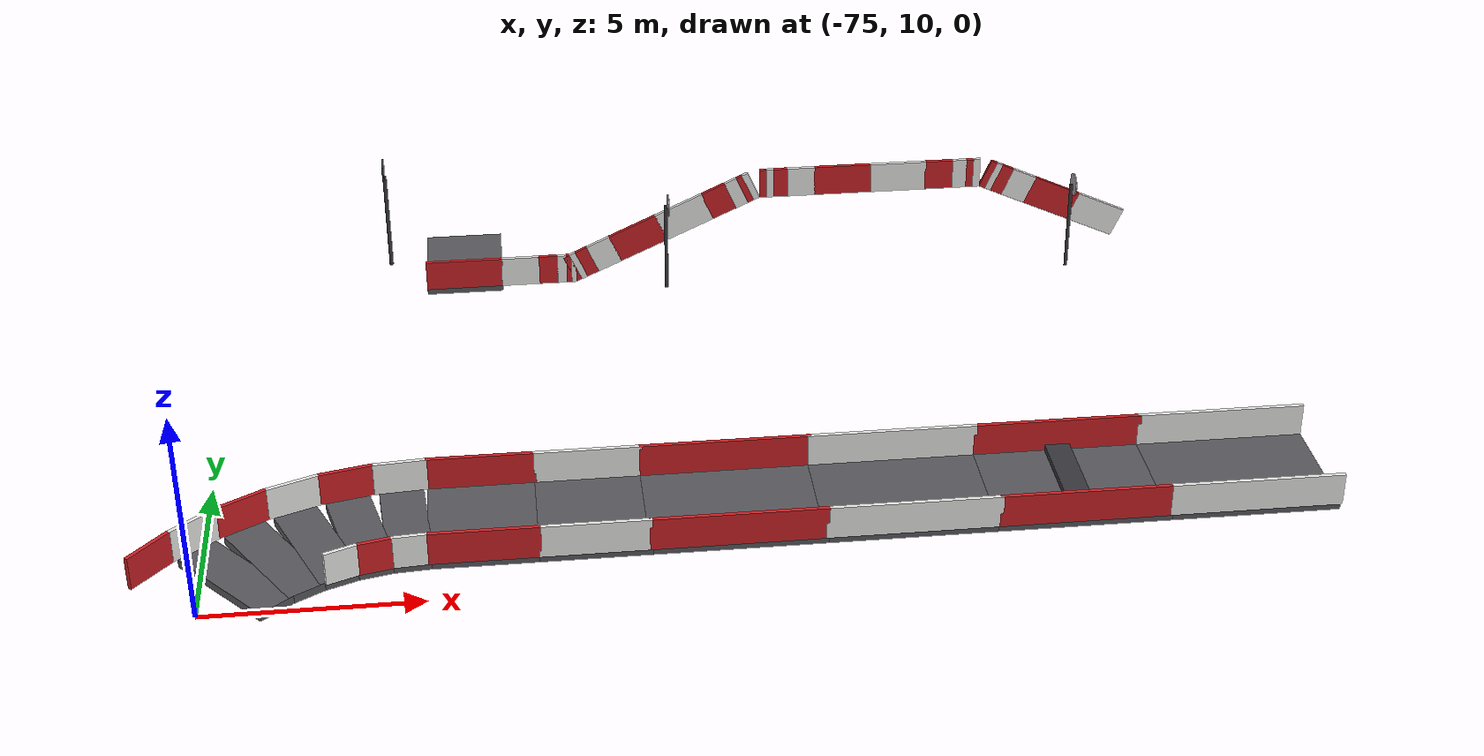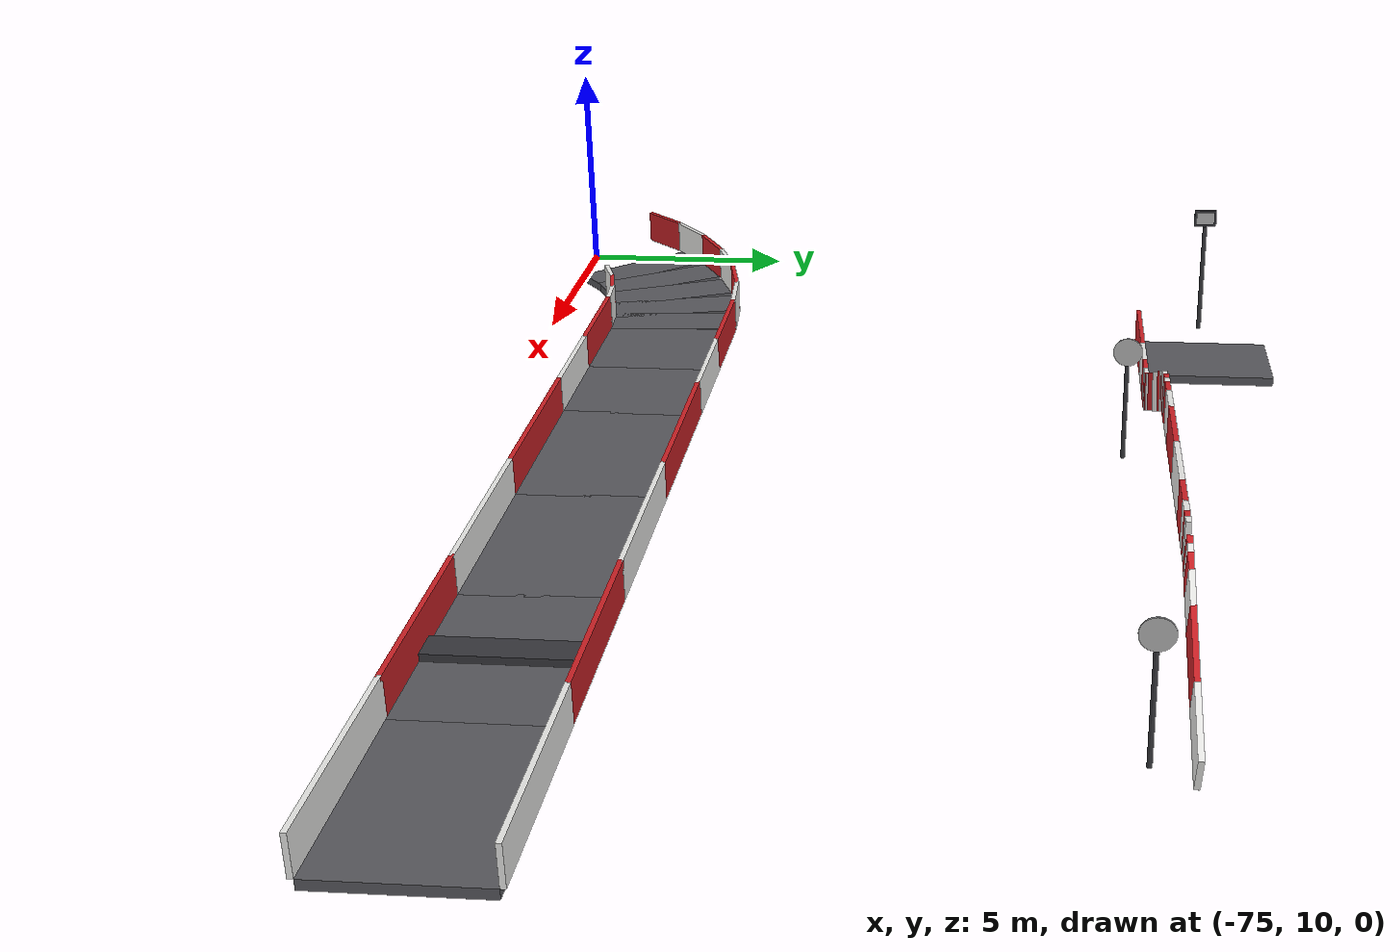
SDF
<sdf version="1.10">
 <world name="ika_parkur">
  <model name="parkur_road">
   <static>true</static>
   <link name="road_0095">
    <pose>-74.208399 11.427402 -0.1 0 0 0.706858</pose>
    <collision name="road_0095_col">
     <geometry><box><size>1.040368 3 0.2</size></box></geometry>
     <surface>
      <friction><ode><mu>1</mu><mu2>1</mu2></ode></friction>
      <contact><ode><kp>1000000</kp><kd>1</kd></ode></contact>
     </surface>
    </collision>
    <visual name="road_0095_vis">
     <geometry><box><size>1.040368 3 0.2</size></box></geometry>
     <material>
      <ambient>0.35 0.35 0.37 1</ambient>
      <diffuse>0.35 0.35 0.37 1</diffuse>
      <specular>0.1 0.1 0.1 1</specular>
     </material>
    </visual>
   </link>
   <link name="road_0096">
    <pose>-73.385771 12.025076 -0.1 0 0 0.549779</pose>
    <collision name="road_0096_col">
     <geometry><box><size>1.040368 3 0.2</size></box></geometry>
     <surface>
      <friction><ode><mu>1</mu><mu2>1</mu2></ode></friction>
      <contact><ode><kp>1000000</kp><kd>1</kd></ode></contact>
     </surface>
    </collision>
    <visual name="road_0096_vis">
     <geometry><box><size>1.040368 3 0.2</size></box></geometry>
     <material>
      <ambient>0.35 0.35 0.37 1</ambient>
      <diffuse>0.35 0.35 0.37 1</diffuse>
      <specular>0.1 0.1 0.1 1</specular>
     </material>
    </visual>
   </link>
   <link name="road_0097">
    <pose>-72.479774 12.486705 -0.1 0 0 0.392699</pose>
    <collision name="road_0097_col">
     <geometry><box><size>1.040368 3 0.2</size></box></geometry>
     <surface>
      <friction><ode><mu>1</mu><mu2>1</mu2></ode></friction>
      <contact><ode><kp>1000000</kp><kd>1</kd></ode></contact>
     </surface>
    </collision>
    <visual name="road_0097_vis">
     <geometry><box><size>1.040368 3 0.2</size></box></geometry>
     <material>
      <ambient>0.35 0.35 0.37 1</ambient>
      <diffuse>0.35 0.35 0.37 1</diffuse>
      <specular>0.1 0.1 0.1 1</specular>
     </material>
    </visual>
   </link>
   <link name="road_0098">
    <pose>-71.512717 12.800921 -0.1 0 0 0.235619</pose>
    <collision name="road_0098_col">
     <geometry><box><size>1.040368 3 0.2</size></box></geometry>
     <surface>
      <friction><ode><mu>1</mu><mu2>1</mu2></ode></friction>
      <contact><ode><kp>1000000</kp><kd>1</kd></ode></contact>
     </surface>
    </collision>
    <visual name="road_0098_vis">
     <geometry><box><size>1.040368 3 0.2</size></box></geometry>
     <material>
      <ambient>0.35 0.35 0.37 1</ambient>
      <diffuse>0.35 0.35 0.37 1</diffuse>
      <specular>0.1 0.1 0.1 1</specular>
     </material>
    </visual>
   </link>
   <link name="road_0099">
    <pose>-70.508412 12.959987 -0.1 0 0 0.07854</pose>
    <collision name="road_0099_col">
     <geometry><box><size>1.040368 3 0.2</size></box></geometry>
     <surface>
      <friction><ode><mu>1</mu><mu2>1</mu2></ode></friction>
      <contact><ode><kp>1000000</kp><kd>1</kd></ode></contact>
     </surface>
    </collision>
    <visual name="road_0099_vis">
     <geometry><box><size>1.040368 3 0.2</size></box></geometry>
     <material>
      <ambient>0.35 0.35 0.37 1</ambient>
      <diffuse>0.35 0.35 0.37 1</diffuse>
      <specular>0.1 0.1 0.1 1</specular>
     </material>
    </visual>
   </link>
   <link name="road_0100">
    <pose>-68.75 13 -0.1 0 0 0</pose>
    <collision name="road_0100_col">
     <geometry><box><size>2.55 3 0.2</size></box></geometry>
     <surface>
      <friction><ode><mu>1</mu><mu2>1</mu2></ode></friction>
      <contact><ode><kp>1000000</kp><kd>1</kd></ode></contact>
     </surface>
    </collision>
    <visual name="road_0100_vis">
     <geometry><box><size>2.55 3 0.2</size></box></geometry>
     <material>
      <ambient>0.35 0.35 0.37 1</ambient>
      <diffuse>0.35 0.35 0.37 1</diffuse>
      <specular>0.1 0.1 0.1 1</specular>
     </material>
    </visual>
   </link>
   <link name="road_0101">
    <pose>-66.25 13 -0.1 0 0 0</pose>
    <collision name="road_0101_col">
     <geometry><box><size>2.55 3 0.2</size></box></geometry>
     <surface>
      <friction><ode><mu>1</mu><mu2>1</mu2></ode></friction>
      <contact><ode><kp>1000000</kp><kd>1</kd></ode></contact>
     </surface>
    </collision>
    <visual name="road_0101_vis">
     <geometry><box><size>2.55 3 0.2</size></box></geometry>
     <material>
      <ambient>0.35 0.35 0.37 1</ambient>
      <diffuse>0.35 0.35 0.37 1</diffuse>
      <specular>0.1 0.1 0.1 1</specular>
     </material>
    </visual>
   </link>
   <link name="road_0102">
    <pose>-63 13 -0.1 0 0 0</pose>
    <collision name="road_0102_col">
     <geometry><box><size>4.08 3 0.2</size></box></geometry>
     <surface>
      <friction><ode><mu>1</mu><mu2>1</mu2></ode></friction>
      <contact><ode><kp>1000000</kp><kd>1</kd></ode></contact>
     </surface>
    </collision>
    <visual name="road_0102_vis">
     <geometry><box><size>4.08 3 0.2</size></box></geometry>
     <material>
      <ambient>0.35 0.35 0.37 1</ambient>
      <diffuse>0.35 0.35 0.37 1</diffuse>
      <specular>0.1 0.1 0.1 1</specular>
     </material>
    </visual>
   </link>
   <link name="road_0103">
    <pose>-59 13 -0.1 0 0 0</pose>
    <collision name="road_0103_col">
     <geometry><box><size>4.08 3 0.2</size></box></geometry>
     <surface>
      <friction><ode><mu>1</mu><mu2>1</mu2></ode></friction>
      <contact><ode><kp>1000000</kp><kd>1</kd></ode></contact>
     </surface>
    </collision>
    <visual name="road_0103_vis">
     <geometry><box><size>4.08 3 0.2</size></box></geometry>
     <material>
      <ambient>0.35 0.35 0.37 1</ambient>
      <diffuse>0.35 0.35 0.37 1</diffuse>
      <specular>0.1 0.1 0.1 1</specular>
     </material>
    </visual>
   </link>
   <link name="road_0104">
    <pose>-55 13 -0.1 0 0 0</pose>
    <collision name="road_0104_col">
     <geometry><box><size>4.08 3 0.2</size></box></geometry>
     <surface>
      <friction><ode><mu>1</mu><mu2>1</mu2></ode></friction>
      <contact><ode><kp>1000000</kp><kd>1</kd></ode></contact>
     </surface>
    </collision>
    <visual name="road_0104_vis">
     <geometry><box><size>4.08 3 0.2</size></box></geometry>
     <material>
      <ambient>0.35 0.35 0.37 1</ambient>
      <diffuse>0.35 0.35 0.37 1</diffuse>
      <specular>0.1 0.1 0.1 1</specular>
     </material>
    </visual>
   </link>
   <link name="road_0105">
    <pose>-51 13 -0.1 0 0 0</pose>
    <collision name="road_0105_col">
     <geometry><box><size>4.08 3 0.2</size></box></geometry>
     <surface>
      <friction><ode><mu>1</mu><mu2>1</mu2></ode></friction>
      <contact><ode><kp>1000000</kp><kd>1</kd></ode></contact>
     </surface>
    </collision>
    <visual name="road_0105_vis">
     <geometry><box><size>4.08 3 0.2</size></box></geometry>
     <material>
      <ambient>0.35 0.35 0.37 1</ambient>
      <diffuse>0.35 0.35 0.37 1</diffuse>
      <specular>0.1 0.1 0.1 1</specular>
     </material>
    </visual>
   </link>
   <link name="road_0194">
    <pose>-69 26 -0.1 0 0 3.141593</pose>
    <collision name="road_0194_col">
     <geometry><box><size>2.04 3 0.2</size></box></geometry>
     <surface>
      <friction><ode><mu>1</mu><mu2>1</mu2></ode></friction>
      <contact><ode><kp>1000000</kp><kd>1</kd></ode></contact>
     </surface>
    </collision>
    <visual name="road_0194_vis">
     <geometry><box><size>2.04 3 0.2</size></box></geometry>
     <material>
      <ambient>0.35 0.35 0.37 1</ambient>
      <diffuse>0.35 0.35 0.37 1</diffuse>
      <specular>0.1 0.1 0.1 1</specular>
     </material>
    </visual>
   </link>
  </model>
  <model name="parkur_barriers">
   <static>true</static>
   <link name="barrier_l_0094">
    <pose>-76.102398 11.71194 0.4 0 0 0.863938</pose>
    <collision name="barrier_l_0094_col">
     <geometry><box><size>1.288455 0.1 0.8</size></box></geometry>
     <surface>
      <friction><ode><mu>0.6</mu><mu2>0.6</mu2></ode></friction>
      <contact><ode><kp>1000000</kp><kd>1</kd></ode></contact>
     </surface>
    </collision>
    <visual name="barrier_l_0094_vis">
     <geometry><box><size>1.288455 0.1 0.8</size></box></geometry>
     <material>
      <ambient>0.81 0.13 0.15 1</ambient>
      <diffuse>0.81 0.13 0.15 1</diffuse>
      <specular>0.1 0.1 0.1 1</specular>
     </material>
    </visual>
   </link>
   <link name="barrier_l_0095">
    <pose>-75.21194 12.602398 0.4 0 0 0.706858</pose>
    <collision name="barrier_l_0095_col">
     <geometry><box><size>1.288455 0.1 0.8</size></box></geometry>
     <surface>
      <friction><ode><mu>0.6</mu><mu2>0.6</mu2></ode></friction>
      <contact><ode><kp>1000000</kp><kd>1</kd></ode></contact>
     </surface>
    </collision>
    <visual name="barrier_l_0095_vis">
     <geometry><box><size>1.288455 0.1 0.8</size></box></geometry>
     <material>
      <ambient>0.93 0.93 0.92 1</ambient>
      <diffuse>0.93 0.93 0.92 1</diffuse>
      <specular>0.1 0.1 0.1 1</specular>
     </material>
    </visual>
   </link>
   <link name="barrier_l_0096">
    <pose>-74.193147 13.342595 0.4 0 0 0.549779</pose>
    <collision name="barrier_l_0096_col">
     <geometry><box><size>1.288455 0.1 0.8</size></box></geometry>
     <surface>
      <friction><ode><mu>0.6</mu><mu2>0.6</mu2></ode></friction>
      <contact><ode><kp>1000000</kp><kd>1</kd></ode></contact>
     </surface>
    </collision>
    <visual name="barrier_l_0096_vis">
     <geometry><box><size>1.288455 0.1 0.8</size></box></geometry>
     <material>
      <ambient>0.81 0.13 0.15 1</ambient>
      <diffuse>0.81 0.13 0.15 1</diffuse>
      <specular>0.1 0.1 0.1 1</specular>
     </material>
    </visual>
   </link>
   <link name="barrier_l_0097">
    <pose>-73.071105 13.914304 0.4 0 0 0.392699</pose>
    <collision name="barrier_l_0097_col">
     <geometry><box><size>1.288455 0.1 0.8</size></box></geometry>
     <surface>
      <friction><ode><mu>0.6</mu><mu2>0.6</mu2></ode></friction>
      <contact><ode><kp>1000000</kp><kd>1</kd></ode></contact>
     </surface>
    </collision>
    <visual name="barrier_l_0097_vis">
     <geometry><box><size>1.288455 0.1 0.8</size></box></geometry>
     <material>
      <ambient>0.93 0.93 0.92 1</ambient>
      <diffuse>0.93 0.93 0.92 1</diffuse>
      <specular>0.1 0.1 0.1 1</specular>
     </material>
    </visual>
   </link>
   <link name="barrier_r_0097">
    <pose>-71.888444 11.059106 0.4 0 0 0.392699</pose>
    <collision name="barrier_r_0097_col">
     <geometry><box><size>0.79228 0.1 0.8</size></box></geometry>
     <surface>
      <friction><ode><mu>0.6</mu><mu2>0.6</mu2></ode></friction>
      <contact><ode><kp>1000000</kp><kd>1</kd></ode></contact>
     </surface>
    </collision>
    <visual name="barrier_r_0097_vis">
     <geometry><box><size>0.79228 0.1 0.8</size></box></geometry>
     <material>
      <ambient>0.93 0.93 0.92 1</ambient>
      <diffuse>0.93 0.93 0.92 1</diffuse>
      <specular>0.1 0.1 0.1 1</specular>
     </material>
    </visual>
   </link>
   <link name="barrier_l_0098">
    <pose>-71.873442 14.303448 0.4 0 0 0.235619</pose>
    <collision name="barrier_l_0098_col">
     <geometry><box><size>1.288455 0.1 0.8</size></box></geometry>
     <surface>
      <friction><ode><mu>0.6</mu><mu2>0.6</mu2></ode></friction>
      <contact><ode><kp>1000000</kp><kd>1</kd></ode></contact>
     </surface>
    </collision>
    <visual name="barrier_l_0098_vis">
     <geometry><box><size>1.288455 0.1 0.8</size></box></geometry>
     <material>
      <ambient>0.81 0.13 0.15 1</ambient>
      <diffuse>0.81 0.13 0.15 1</diffuse>
      <specular>0.1 0.1 0.1 1</specular>
     </material>
    </visual>
   </link>
   <link name="barrier_r_0098">
    <pose>-71.151992 11.298394 0.4 0 0 0.235619</pose>
    <collision name="barrier_r_0098_col">
     <geometry><box><size>0.79228 0.1 0.8</size></box></geometry>
     <surface>
      <friction><ode><mu>0.6</mu><mu2>0.6</mu2></ode></friction>
      <contact><ode><kp>1000000</kp><kd>1</kd></ode></contact>
     </surface>
    </collision>
    <visual name="barrier_r_0098_vis">
     <geometry><box><size>0.79228 0.1 0.8</size></box></geometry>
     <material>
      <ambient>0.81 0.13 0.15 1</ambient>
      <diffuse>0.81 0.13 0.15 1</diffuse>
      <specular>0.1 0.1 0.1 1</specular>
     </material>
    </visual>
   </link>
   <link name="barrier_l_0099">
    <pose>-70.629649 14.500446 0.4 0 0 0.07854</pose>
    <collision name="barrier_l_0099_col">
     <geometry><box><size>1.288455 0.1 0.8</size></box></geometry>
     <surface>
      <friction><ode><mu>0.6</mu><mu2>0.6</mu2></ode></friction>
      <contact><ode><kp>1000000</kp><kd>1</kd></ode></contact>
     </surface>
    </collision>
    <visual name="barrier_l_0099_vis">
     <geometry><box><size>1.288455 0.1 0.8</size></box></geometry>
     <material>
      <ambient>0.93 0.93 0.92 1</ambient>
      <diffuse>0.93 0.93 0.92 1</diffuse>
      <specular>0.1 0.1 0.1 1</specular>
     </material>
    </visual>
   </link>
   <link name="barrier_r_0099">
    <pose>-70.387175 11.419529 0.4 0 0 0.07854</pose>
    <collision name="barrier_r_0099_col">
     <geometry><box><size>0.79228 0.1 0.8</size></box></geometry>
     <surface>
      <friction><ode><mu>0.6</mu><mu2>0.6</mu2></ode></friction>
      <contact><ode><kp>1000000</kp><kd>1</kd></ode></contact>
     </surface>
    </collision>
    <visual name="barrier_r_0099_vis">
     <geometry><box><size>0.79228 0.1 0.8</size></box></geometry>
     <material>
      <ambient>0.93 0.93 0.92 1</ambient>
      <diffuse>0.93 0.93 0.92 1</diffuse>
      <specular>0.1 0.1 0.1 1</specular>
     </material>
    </visual>
   </link>
   <link name="barrier_l_0100">
    <pose>-68.75 14.55 0.4 0 0 0</pose>
    <collision name="barrier_l_0100_col">
     <geometry><box><size>2.55 0.1 0.8</size></box></geometry>
     <surface>
      <friction><ode><mu>0.6</mu><mu2>0.6</mu2></ode></friction>
      <contact><ode><kp>1000000</kp><kd>1</kd></ode></contact>
     </surface>
    </collision>
    <visual name="barrier_l_0100_vis">
     <geometry><box><size>2.55 0.1 0.8</size></box></geometry>
     <material>
      <ambient>0.81 0.13 0.15 1</ambient>
      <diffuse>0.81 0.13 0.15 1</diffuse>
      <specular>0.1 0.1 0.1 1</specular>
     </material>
    </visual>
   </link>
   <link name="barrier_r_0100">
    <pose>-68.75 11.45 0.4 0 0 0</pose>
    <collision name="barrier_r_0100_col">
     <geometry><box><size>2.55 0.1 0.8</size></box></geometry>
     <surface>
      <friction><ode><mu>0.6</mu><mu2>0.6</mu2></ode></friction>
      <contact><ode><kp>1000000</kp><kd>1</kd></ode></contact>
     </surface>
    </collision>
    <visual name="barrier_r_0100_vis">
     <geometry><box><size>2.55 0.1 0.8</size></box></geometry>
     <material>
      <ambient>0.81 0.13 0.15 1</ambient>
      <diffuse>0.81 0.13 0.15 1</diffuse>
      <specular>0.1 0.1 0.1 1</specular>
     </material>
    </visual>
   </link>
   <link name="barrier_l_0101">
    <pose>-66.25 14.55 0.4 0 0 0</pose>
    <collision name="barrier_l_0101_col">
     <geometry><box><size>2.55 0.1 0.8</size></box></geometry>
     <surface>
      <friction><ode><mu>0.6</mu><mu2>0.6</mu2></ode></friction>
      <contact><ode><kp>1000000</kp><kd>1</kd></ode></contact>
     </surface>
    </collision>
    <visual name="barrier_l_0101_vis">
     <geometry><box><size>2.55 0.1 0.8</size></box></geometry>
     <material>
      <ambient>0.93 0.93 0.92 1</ambient>
      <diffuse>0.93 0.93 0.92 1</diffuse>
      <specular>0.1 0.1 0.1 1</specular>
     </material>
    </visual>
   </link>
   <link name="barrier_r_0101">
    <pose>-66.25 11.45 0.4 0 0 0</pose>
    <collision name="barrier_r_0101_col">
     <geometry><box><size>2.55 0.1 0.8</size></box></geometry>
     <surface>
      <friction><ode><mu>0.6</mu><mu2>0.6</mu2></ode></friction>
      <contact><ode><kp>1000000</kp><kd>1</kd></ode></contact>
     </surface>
    </collision>
    <visual name="barrier_r_0101_vis">
     <geometry><box><size>2.55 0.1 0.8</size></box></geometry>
     <material>
      <ambient>0.93 0.93 0.92 1</ambient>
      <diffuse>0.93 0.93 0.92 1</diffuse>
      <specular>0.1 0.1 0.1 1</specular>
     </material>
    </visual>
   </link>
   <link name="barrier_l_0102">
    <pose>-63 14.55 0.4 0 0 0</pose>
    <collision name="barrier_l_0102_col">
     <geometry><box><size>4.08 0.1 0.8</size></box></geometry>
     <surface>
      <friction><ode><mu>0.6</mu><mu2>0.6</mu2></ode></friction>
      <contact><ode><kp>1000000</kp><kd>1</kd></ode></contact>
     </surface>
    </collision>
    <visual name="barrier_l_0102_vis">
     <geometry><box><size>4.08 0.1 0.8</size></box></geometry>
     <material>
      <ambient>0.81 0.13 0.15 1</ambient>
      <diffuse>0.81 0.13 0.15 1</diffuse>
      <specular>0.1 0.1 0.1 1</specular>
     </material>
    </visual>
   </link>
   <link name="barrier_r_0102">
    <pose>-63 11.45 0.4 0 0 0</pose>
    <collision name="barrier_r_0102_col">
     <geometry><box><size>4.08 0.1 0.8</size></box></geometry>
     <surface>
      <friction><ode><mu>0.6</mu><mu2>0.6</mu2></ode></friction>
      <contact><ode><kp>1000000</kp><kd>1</kd></ode></contact>
     </surface>
    </collision>
    <visual name="barrier_r_0102_vis">
     <geometry><box><size>4.08 0.1 0.8</size></box></geometry>
     <material>
      <ambient>0.81 0.13 0.15 1</ambient>
      <diffuse>0.81 0.13 0.15 1</diffuse>
      <specular>0.1 0.1 0.1 1</specular>
     </material>
    </visual>
   </link>
   <link name="barrier_l_0103">
    <pose>-59 14.55 0.4 0 0 0</pose>
    <collision name="barrier_l_0103_col">
     <geometry><box><size>4.08 0.1 0.8</size></box></geometry>
     <surface>
      <friction><ode><mu>0.6</mu><mu2>0.6</mu2></ode></friction>
      <contact><ode><kp>1000000</kp><kd>1</kd></ode></contact>
     </surface>
    </collision>
    <visual name="barrier_l_0103_vis">
     <geometry><box><size>4.08 0.1 0.8</size></box></geometry>
     <material>
      <ambient>0.93 0.93 0.92 1</ambient>
      <diffuse>0.93 0.93 0.92 1</diffuse>
      <specular>0.1 0.1 0.1 1</specular>
     </material>
    </visual>
   </link>
   <link name="barrier_r_0103">
    <pose>-59 11.45 0.4 0 0 0</pose>
    <collision name="barrier_r_0103_col">
     <geometry><box><size>4.08 0.1 0.8</size></box></geometry>
     <surface>
      <friction><ode><mu>0.6</mu><mu2>0.6</mu2></ode></friction>
      <contact><ode><kp>1000000</kp><kd>1</kd></ode></contact>
     </surface>
    </collision>
    <visual name="barrier_r_0103_vis">
     <geometry><box><size>4.08 0.1 0.8</size></box></geometry>
     <material>
      <ambient>0.93 0.93 0.92 1</ambient>
      <diffuse>0.93 0.93 0.92 1</diffuse>
      <specular>0.1 0.1 0.1 1</specular>
     </material>
    </visual>
   </link>
   <link name="barrier_l_0104">
    <pose>-55 14.55 0.4 0 0 0</pose>
    <collision name="barrier_l_0104_col">
     <geometry><box><size>4.08 0.1 0.8</size></box></geometry>
     <surface>
      <friction><ode><mu>0.6</mu><mu2>0.6</mu2></ode></friction>
      <contact><ode><kp>1000000</kp><kd>1</kd></ode></contact>
     </surface>
    </collision>
    <visual name="barrier_l_0104_vis">
     <geometry><box><size>4.08 0.1 0.8</size></box></geometry>
     <material>
      <ambient>0.81 0.13 0.15 1</ambient>
      <diffuse>0.81 0.13 0.15 1</diffuse>
      <specular>0.1 0.1 0.1 1</specular>
     </material>
    </visual>
   </link>
   <link name="barrier_r_0104">
    <pose>-55 11.45 0.4 0 0 0</pose>
    <collision name="barrier_r_0104_col">
     <geometry><box><size>4.08 0.1 0.8</size></box></geometry>
     <surface>
      <friction><ode><mu>0.6</mu><mu2>0.6</mu2></ode></friction>
      <contact><ode><kp>1000000</kp><kd>1</kd></ode></contact>
     </surface>
    </collision>
    <visual name="barrier_r_0104_vis">
     <geometry><box><size>4.08 0.1 0.8</size></box></geometry>
     <material>
      <ambient>0.81 0.13 0.15 1</ambient>
      <diffuse>0.81 0.13 0.15 1</diffuse>
      <specular>0.1 0.1 0.1 1</specular>
     </material>
    </visual>
   </link>
   <link name="barrier_l_0105">
    <pose>-51 14.55 0.4 0 0 0</pose>
    <collision name="barrier_l_0105_col">
     <geometry><box><size>4.08 0.1 0.8</size></box></geometry>
     <surface>
      <friction><ode><mu>0.6</mu><mu2>0.6</mu2></ode></friction>
      <contact><ode><kp>1000000</kp><kd>1</kd></ode></contact>
     </surface>
    </collision>
    <visual name="barrier_l_0105_vis">
     <geometry><box><size>4.08 0.1 0.8</size></box></geometry>
     <material>
      <ambient>0.93 0.93 0.92 1</ambient>
      <diffuse>0.93 0.93 0.92 1</diffuse>
      <specular>0.1 0.1 0.1 1</specular>
     </material>
    </visual>
   </link>
   <link name="barrier_r_0105">
    <pose>-51 11.45 0.4 0 0 0</pose>
    <collision name="barrier_r_0105_col">
     <geometry><box><size>4.08 0.1 0.8</size></box></geometry>
     <surface>
      <friction><ode><mu>0.6</mu><mu2>0.6</mu2></ode></friction>
      <contact><ode><kp>1000000</kp><kd>1</kd></ode></contact>
     </surface>
    </collision>
    <visual name="barrier_r_0105_vis">
     <geometry><box><size>4.08 0.1 0.8</size></box></geometry>
     <material>
      <ambient>0.93 0.93 0.92 1</ambient>
      <diffuse>0.93 0.93 0.92 1</diffuse>
      <specular>0.1 0.1 0.1 1</specular>
     </material>
    </visual>
   </link>
   <link name="barrier_l_0163">
    <pose>-51.710854 24.45 1.208519 0 -0.422854 3.141593</pose>
    <collision name="barrier_l_0163_col">
     <geometry><box><size>1.398147 0.1 0.8</size></box></geometry>
     <surface>
      <friction><ode><mu>0.6</mu><mu2>0.6</mu2></ode></friction>
      <contact><ode><kp>1000000</kp><kd>1</kd></ode></contact>
     </surface>
    </collision>
    <visual name="barrier_l_0163_vis">
     <geometry><box><size>1.398147 0.1 0.8</size></box></geometry>
     <material>
      <ambient>0.93 0.93 0.92 1</ambient>
      <diffuse>0.93 0.93 0.92 1</diffuse>
      <specular>0.1 0.1 0.1 1</specular>
     </material>
    </visual>
   </link>
   <link name="barrier_l_0164">
    <pose>-52.960854 24.45 1.771019 0 -0.422854 3.141593</pose>
    <collision name="barrier_l_0164_col">
     <geometry><box><size>1.398147 0.1 0.8</size></box></geometry>
     <surface>
      <friction><ode><mu>0.6</mu><mu2>0.6</mu2></ode></friction>
      <contact><ode><kp>1000000</kp><kd>1</kd></ode></contact>
     </surface>
    </collision>
    <visual name="barrier_l_0164_vis">
     <geometry><box><size>1.398147 0.1 0.8</size></box></geometry>
     <material>
      <ambient>0.81 0.13 0.15 1</ambient>
      <diffuse>0.81 0.13 0.15 1</diffuse>
      <specular>0.1 0.1 0.1 1</specular>
     </material>
    </visual>
   </link>
   <link name="barrier_l_0165">
    <pose>-53.898354 24.45 2.192894 0 -0.422854 3.141593</pose>
    <collision name="barrier_l_0165_col">
     <geometry><box><size>0.699073 0.1 0.8</size></box></geometry>
     <surface>
      <friction><ode><mu>0.6</mu><mu2>0.6</mu2></ode></friction>
      <contact><ode><kp>1000000</kp><kd>1</kd></ode></contact>
     </surface>
    </collision>
    <visual name="barrier_l_0165_vis">
     <geometry><box><size>0.699073 0.1 0.8</size></box></geometry>
     <material>
      <ambient>0.93 0.93 0.92 1</ambient>
      <diffuse>0.93 0.93 0.92 1</diffuse>
      <specular>0.1 0.1 0.1 1</specular>
     </material>
    </visual>
   </link>
   <link name="barrier_l_0166">
    <pose>-54.367104 24.45 2.403831 0 -0.422854 3.141593</pose>
    <collision name="barrier_l_0166_col">
     <geometry><box><size>0.349537 0.1 0.8</size></box></geometry>
     <surface>
      <friction><ode><mu>0.6</mu><mu2>0.6</mu2></ode></friction>
      <contact><ode><kp>1000000</kp><kd>1</kd></ode></contact>
     </surface>
    </collision>
    <visual name="barrier_l_0166_vis">
     <geometry><box><size>0.349537 0.1 0.8</size></box></geometry>
     <material>
      <ambient>0.81 0.13 0.15 1</ambient>
      <diffuse>0.81 0.13 0.15 1</diffuse>
      <specular>0.1 0.1 0.1 1</specular>
     </material>
    </visual>
   </link>
   <link name="barrier_l_0167">
    <pose>-54.601479 24.45 2.5093 0 -0.422854 3.141593</pose>
    <collision name="barrier_l_0167_col">
     <geometry><box><size>0.174768 0.1 0.8</size></box></geometry>
     <surface>
      <friction><ode><mu>0.6</mu><mu2>0.6</mu2></ode></friction>
      <contact><ode><kp>1000000</kp><kd>1</kd></ode></contact>
     </surface>
    </collision>
    <visual name="barrier_l_0167_vis">
     <geometry><box><size>0.174768 0.1 0.8</size></box></geometry>
     <material>
      <ambient>0.93 0.93 0.92 1</ambient>
      <diffuse>0.93 0.93 0.92 1</diffuse>
      <specular>0.1 0.1 0.1 1</specular>
     </material>
    </visual>
   </link>
   <link name="barrier_l_0168">
    <pose>-54.757729 24.45 2.579612 0 -0.422854 3.141593</pose>
    <collision name="barrier_l_0168_col">
     <geometry><box><size>0.174768 0.1 0.8</size></box></geometry>
     <surface>
      <friction><ode><mu>0.6</mu><mu2>0.6</mu2></ode></friction>
      <contact><ode><kp>1000000</kp><kd>1</kd></ode></contact>
     </surface>
    </collision>
    <visual name="barrier_l_0168_vis">
     <geometry><box><size>0.174768 0.1 0.8</size></box></geometry>
     <material>
      <ambient>0.81 0.13 0.15 1</ambient>
      <diffuse>0.81 0.13 0.15 1</diffuse>
      <specular>0.1 0.1 0.1 1</specular>
     </material>
    </visual>
   </link>
   <link name="barrier_l_0169">
    <pose>-55.09375 24.45 2.65 0 0 3.141593</pose>
    <collision name="barrier_l_0169_col">
     <geometry><box><size>0.19125 0.1 0.8</size></box></geometry>
     <surface>
      <friction><ode><mu>0.6</mu><mu2>0.6</mu2></ode></friction>
      <contact><ode><kp>1000000</kp><kd>1</kd></ode></contact>
     </surface>
    </collision>
    <visual name="barrier_l_0169_vis">
     <geometry><box><size>0.19125 0.1 0.8</size></box></geometry>
     <material>
      <ambient>0.93 0.93 0.92 1</ambient>
      <diffuse>0.93 0.93 0.92 1</diffuse>
      <specular>0.1 0.1 0.1 1</specular>
     </material>
    </visual>
   </link>
   <link name="barrier_l_0170">
    <pose>-55.28125 24.45 2.65 0 0 3.141593</pose>
    <collision name="barrier_l_0170_col">
     <geometry><box><size>0.19125 0.1 0.8</size></box></geometry>
     <surface>
      <friction><ode><mu>0.6</mu><mu2>0.6</mu2></ode></friction>
      <contact><ode><kp>1000000</kp><kd>1</kd></ode></contact>
     </surface>
    </collision>
    <visual name="barrier_l_0170_vis">
     <geometry><box><size>0.19125 0.1 0.8</size></box></geometry>
     <material>
      <ambient>0.81 0.13 0.15 1</ambient>
      <diffuse>0.81 0.13 0.15 1</diffuse>
      <specular>0.1 0.1 0.1 1</specular>
     </material>
    </visual>
   </link>
   <link name="barrier_l_0171">
    <pose>-55.5625 24.45 2.65 0 0 3.141593</pose>
    <collision name="barrier_l_0171_col">
     <geometry><box><size>0.3825 0.1 0.8</size></box></geometry>
     <surface>
      <friction><ode><mu>0.6</mu><mu2>0.6</mu2></ode></friction>
      <contact><ode><kp>1000000</kp><kd>1</kd></ode></contact>
     </surface>
    </collision>
    <visual name="barrier_l_0171_vis">
     <geometry><box><size>0.3825 0.1 0.8</size></box></geometry>
     <material>
      <ambient>0.93 0.93 0.92 1</ambient>
      <diffuse>0.93 0.93 0.92 1</diffuse>
      <specular>0.1 0.1 0.1 1</specular>
     </material>
    </visual>
   </link>
   <link name="barrier_l_0172">
    <pose>-56.125 24.45 2.65 0 0 3.141593</pose>
    <collision name="barrier_l_0172_col">
     <geometry><box><size>0.765 0.1 0.8</size></box></geometry>
     <surface>
      <friction><ode><mu>0.6</mu><mu2>0.6</mu2></ode></friction>
      <contact><ode><kp>1000000</kp><kd>1</kd></ode></contact>
     </surface>
    </collision>
    <visual name="barrier_l_0172_vis">
     <geometry><box><size>0.765 0.1 0.8</size></box></geometry>
     <material>
      <ambient>0.81 0.13 0.15 1</ambient>
      <diffuse>0.81 0.13 0.15 1</diffuse>
      <specular>0.1 0.1 0.1 1</specular>
     </material>
    </visual>
   </link>
   <link name="barrier_l_0173">
    <pose>-57.25 24.45 2.65 0 0 3.141593</pose>
    <collision name="barrier_l_0173_col">
     <geometry><box><size>1.53 0.1 0.8</size></box></geometry>
     <surface>
      <friction><ode><mu>0.6</mu><mu2>0.6</mu2></ode></friction>
      <contact><ode><kp>1000000</kp><kd>1</kd></ode></contact>
     </surface>
    </collision>
    <visual name="barrier_l_0173_vis">
     <geometry><box><size>1.53 0.1 0.8</size></box></geometry>
     <material>
      <ambient>0.93 0.93 0.92 1</ambient>
      <diffuse>0.93 0.93 0.92 1</diffuse>
      <specular>0.1 0.1 0.1 1</specular>
     </material>
    </visual>
   </link>
   <link name="barrier_l_0174">
    <pose>-58.75 24.45 2.65 0 0 3.141593</pose>
    <collision name="barrier_l_0174_col">
     <geometry><box><size>1.53 0.1 0.8</size></box></geometry>
     <surface>
      <friction><ode><mu>0.6</mu><mu2>0.6</mu2></ode></friction>
      <contact><ode><kp>1000000</kp><kd>1</kd></ode></contact>
     </surface>
    </collision>
    <visual name="barrier_l_0174_vis">
     <geometry><box><size>1.53 0.1 0.8</size></box></geometry>
     <material>
      <ambient>0.81 0.13 0.15 1</ambient>
      <diffuse>0.81 0.13 0.15 1</diffuse>
      <specular>0.1 0.1 0.1 1</specular>
     </material>
    </visual>
   </link>
   <link name="barrier_l_0175">
    <pose>-59.875 24.45 2.65 0 0 3.141593</pose>
    <collision name="barrier_l_0175_col">
     <geometry><box><size>0.765 0.1 0.8</size></box></geometry>
     <surface>
      <friction><ode><mu>0.6</mu><mu2>0.6</mu2></ode></friction>
      <contact><ode><kp>1000000</kp><kd>1</kd></ode></contact>
     </surface>
    </collision>
    <visual name="barrier_l_0175_vis">
     <geometry><box><size>0.765 0.1 0.8</size></box></geometry>
     <material>
      <ambient>0.93 0.93 0.92 1</ambient>
      <diffuse>0.93 0.93 0.92 1</diffuse>
      <specular>0.1 0.1 0.1 1</specular>
     </material>
    </visual>
   </link>
   <link name="barrier_l_0176">
    <pose>-60.4375 24.45 2.65 0 0 3.141593</pose>
    <collision name="barrier_l_0176_col">
     <geometry><box><size>0.3825 0.1 0.8</size></box></geometry>
     <surface>
      <friction><ode><mu>0.6</mu><mu2>0.6</mu2></ode></friction>
      <contact><ode><kp>1000000</kp><kd>1</kd></ode></contact>
     </surface>
    </collision>
    <visual name="barrier_l_0176_vis">
     <geometry><box><size>0.3825 0.1 0.8</size></box></geometry>
     <material>
      <ambient>0.81 0.13 0.15 1</ambient>
      <diffuse>0.81 0.13 0.15 1</diffuse>
      <specular>0.1 0.1 0.1 1</specular>
     </material>
    </visual>
   </link>
   <link name="barrier_l_0177">
    <pose>-60.71875 24.45 2.65 0 0 3.141593</pose>
    <collision name="barrier_l_0177_col">
     <geometry><box><size>0.19125 0.1 0.8</size></box></geometry>
     <surface>
      <friction><ode><mu>0.6</mu><mu2>0.6</mu2></ode></friction>
      <contact><ode><kp>1000000</kp><kd>1</kd></ode></contact>
     </surface>
    </collision>
    <visual name="barrier_l_0177_vis">
     <geometry><box><size>0.19125 0.1 0.8</size></box></geometry>
     <material>
      <ambient>0.93 0.93 0.92 1</ambient>
      <diffuse>0.93 0.93 0.92 1</diffuse>
      <specular>0.1 0.1 0.1 1</specular>
     </material>
    </visual>
   </link>
   <link name="barrier_l_0178">
    <pose>-60.90625 24.45 2.65 0 0 3.141593</pose>
    <collision name="barrier_l_0178_col">
     <geometry><box><size>0.19125 0.1 0.8</size></box></geometry>
     <surface>
      <friction><ode><mu>0.6</mu><mu2>0.6</mu2></ode></friction>
      <contact><ode><kp>1000000</kp><kd>1</kd></ode></contact>
     </surface>
    </collision>
    <visual name="barrier_l_0178_vis">
     <geometry><box><size>0.19125 0.1 0.8</size></box></geometry>
     <material>
      <ambient>0.81 0.13 0.15 1</ambient>
      <diffuse>0.81 0.13 0.15 1</diffuse>
      <specular>0.1 0.1 0.1 1</specular>
     </material>
    </visual>
   </link>
   <link name="barrier_l_0179">
    <pose>-61.242271 24.45 2.579612 0 0.422854 3.141593</pose>
    <collision name="barrier_l_0179_col">
     <geometry><box><size>0.174768 0.1 0.8</size></box></geometry>
     <surface>
      <friction><ode><mu>0.6</mu><mu2>0.6</mu2></ode></friction>
      <contact><ode><kp>1000000</kp><kd>1</kd></ode></contact>
     </surface>
    </collision>
    <visual name="barrier_l_0179_vis">
     <geometry><box><size>0.174768 0.1 0.8</size></box></geometry>
     <material>
      <ambient>0.93 0.93 0.92 1</ambient>
      <diffuse>0.93 0.93 0.92 1</diffuse>
      <specular>0.1 0.1 0.1 1</specular>
     </material>
    </visual>
   </link>
   <link name="barrier_l_0180">
    <pose>-61.398521 24.45 2.5093 0 0.422854 3.141593</pose>
    <collision name="barrier_l_0180_col">
     <geometry><box><size>0.174768 0.1 0.8</size></box></geometry>
     <surface>
      <friction><ode><mu>0.6</mu><mu2>0.6</mu2></ode></friction>
      <contact><ode><kp>1000000</kp><kd>1</kd></ode></contact>
     </surface>
    </collision>
    <visual name="barrier_l_0180_vis">
     <geometry><box><size>0.174768 0.1 0.8</size></box></geometry>
     <material>
      <ambient>0.81 0.13 0.15 1</ambient>
      <diffuse>0.81 0.13 0.15 1</diffuse>
      <specular>0.1 0.1 0.1 1</specular>
     </material>
    </visual>
   </link>
   <link name="barrier_l_0181">
    <pose>-61.632896 24.45 2.403831 0 0.422854 3.141593</pose>
    <collision name="barrier_l_0181_col">
     <geometry><box><size>0.349537 0.1 0.8</size></box></geometry>
     <surface>
      <friction><ode><mu>0.6</mu><mu2>0.6</mu2></ode></friction>
      <contact><ode><kp>1000000</kp><kd>1</kd></ode></contact>
     </surface>
    </collision>
    <visual name="barrier_l_0181_vis">
     <geometry><box><size>0.349537 0.1 0.8</size></box></geometry>
     <material>
      <ambient>0.93 0.93 0.92 1</ambient>
      <diffuse>0.93 0.93 0.92 1</diffuse>
      <specular>0.1 0.1 0.1 1</specular>
     </material>
    </visual>
   </link>
   <link name="barrier_l_0182">
    <pose>-62.101646 24.45 2.192894 0 0.422854 3.141593</pose>
    <collision name="barrier_l_0182_col">
     <geometry><box><size>0.699073 0.1 0.8</size></box></geometry>
     <surface>
      <friction><ode><mu>0.6</mu><mu2>0.6</mu2></ode></friction>
      <contact><ode><kp>1000000</kp><kd>1</kd></ode></contact>
     </surface>
    </collision>
    <visual name="barrier_l_0182_vis">
     <geometry><box><size>0.699073 0.1 0.8</size></box></geometry>
     <material>
      <ambient>0.81 0.13 0.15 1</ambient>
      <diffuse>0.81 0.13 0.15 1</diffuse>
      <specular>0.1 0.1 0.1 1</specular>
     </material>
    </visual>
   </link>
   <link name="barrier_l_0183">
    <pose>-63.039146 24.45 1.771019 0 0.422854 3.141593</pose>
    <collision name="barrier_l_0183_col">
     <geometry><box><size>1.398147 0.1 0.8</size></box></geometry>
     <surface>
      <friction><ode><mu>0.6</mu><mu2>0.6</mu2></ode></friction>
      <contact><ode><kp>1000000</kp><kd>1</kd></ode></contact>
     </surface>
    </collision>
    <visual name="barrier_l_0183_vis">
     <geometry><box><size>1.398147 0.1 0.8</size></box></geometry>
     <material>
      <ambient>0.93 0.93 0.92 1</ambient>
      <diffuse>0.93 0.93 0.92 1</diffuse>
      <specular>0.1 0.1 0.1 1</specular>
     </material>
    </visual>
   </link>
   <link name="barrier_l_0184">
    <pose>-64.289146 24.45 1.208519 0 0.422854 3.141593</pose>
    <collision name="barrier_l_0184_col">
     <geometry><box><size>1.398147 0.1 0.8</size></box></geometry>
     <surface>
      <friction><ode><mu>0.6</mu><mu2>0.6</mu2></ode></friction>
      <contact><ode><kp>1000000</kp><kd>1</kd></ode></contact>
     </surface>
    </collision>
    <visual name="barrier_l_0184_vis">
     <geometry><box><size>1.398147 0.1 0.8</size></box></geometry>
     <material>
      <ambient>0.81 0.13 0.15 1</ambient>
      <diffuse>0.81 0.13 0.15 1</diffuse>
      <specular>0.1 0.1 0.1 1</specular>
     </material>
    </visual>
   </link>
   <link name="barrier_l_0185">
    <pose>-65.226646 24.45 0.786644 0 0.422854 3.141593</pose>
    <collision name="barrier_l_0185_col">
     <geometry><box><size>0.699073 0.1 0.8</size></box></geometry>
     <surface>
      <friction><ode><mu>0.6</mu><mu2>0.6</mu2></ode></friction>
      <contact><ode><kp>1000000</kp><kd>1</kd></ode></contact>
     </surface>
    </collision>
    <visual name="barrier_l_0185_vis">
     <geometry><box><size>0.699073 0.1 0.8</size></box></geometry>
     <material>
      <ambient>0.93 0.93 0.92 1</ambient>
      <diffuse>0.93 0.93 0.92 1</diffuse>
      <specular>0.1 0.1 0.1 1</specular>
     </material>
    </visual>
   </link>
   <link name="barrier_l_0186">
    <pose>-65.695396 24.45 0.575706 0 0.422854 3.141593</pose>
    <collision name="barrier_l_0186_col">
     <geometry><box><size>0.349537 0.1 0.8</size></box></geometry>
     <surface>
      <friction><ode><mu>0.6</mu><mu2>0.6</mu2></ode></friction>
      <contact><ode><kp>1000000</kp><kd>1</kd></ode></contact>
     </surface>
    </collision>
    <visual name="barrier_l_0186_vis">
     <geometry><box><size>0.349537 0.1 0.8</size></box></geometry>
     <material>
      <ambient>0.81 0.13 0.15 1</ambient>
      <diffuse>0.81 0.13 0.15 1</diffuse>
      <specular>0.1 0.1 0.1 1</specular>
     </material>
    </visual>
   </link>
   <link name="barrier_l_0187">
    <pose>-65.929771 24.45 0.470237 0 0.422854 3.141593</pose>
    <collision name="barrier_l_0187_col">
     <geometry><box><size>0.174768 0.1 0.8</size></box></geometry>
     <surface>
      <friction><ode><mu>0.6</mu><mu2>0.6</mu2></ode></friction>
      <contact><ode><kp>1000000</kp><kd>1</kd></ode></contact>
     </surface>
    </collision>
    <visual name="barrier_l_0187_vis">
     <geometry><box><size>0.174768 0.1 0.8</size></box></geometry>
     <material>
      <ambient>0.93 0.93 0.92 1</ambient>
      <diffuse>0.93 0.93 0.92 1</diffuse>
      <specular>0.1 0.1 0.1 1</specular>
     </material>
    </visual>
   </link>
   <link name="barrier_l_0188">
    <pose>-66.086021 24.45 0.399925 0 0.422854 3.141593</pose>
    <collision name="barrier_l_0188_col">
     <geometry><box><size>0.174768 0.1 0.8</size></box></geometry>
     <surface>
      <friction><ode><mu>0.6</mu><mu2>0.6</mu2></ode></friction>
      <contact><ode><kp>1000000</kp><kd>1</kd></ode></contact>
     </surface>
    </collision>
    <visual name="barrier_l_0188_vis">
     <geometry><box><size>0.174768 0.1 0.8</size></box></geometry>
     <material>
      <ambient>0.81 0.13 0.15 1</ambient>
      <diffuse>0.81 0.13 0.15 1</diffuse>
      <specular>0.1 0.1 0.1 1</specular>
     </material>
    </visual>
   </link>
   <link name="barrier_l_0189">
    <pose>-66.0625 24.45 0.4 0 0 3.141593</pose>
    <collision name="barrier_l_0189_col">
     <geometry><box><size>0.1275 0.1 0.8</size></box></geometry>
     <surface>
      <friction><ode><mu>0.6</mu><mu2>0.6</mu2></ode></friction>
      <contact><ode><kp>1000000</kp><kd>1</kd></ode></contact>
     </surface>
    </collision>
    <visual name="barrier_l_0189_vis">
     <geometry><box><size>0.1275 0.1 0.8</size></box></geometry>
     <material>
      <ambient>0.93 0.93 0.92 1</ambient>
      <diffuse>0.93 0.93 0.92 1</diffuse>
      <specular>0.1 0.1 0.1 1</specular>
     </material>
    </visual>
   </link>
   <link name="barrier_l_0190">
    <pose>-66.1875 24.45 0.4 0 0 3.141593</pose>
    <collision name="barrier_l_0190_col">
     <geometry><box><size>0.1275 0.1 0.8</size></box></geometry>
     <surface>
      <friction><ode><mu>0.6</mu><mu2>0.6</mu2></ode></friction>
      <contact><ode><kp>1000000</kp><kd>1</kd></ode></contact>
     </surface>
    </collision>
    <visual name="barrier_l_0190_vis">
     <geometry><box><size>0.1275 0.1 0.8</size></box></geometry>
     <material>
      <ambient>0.81 0.13 0.15 1</ambient>
      <diffuse>0.81 0.13 0.15 1</diffuse>
      <specular>0.1 0.1 0.1 1</specular>
     </material>
    </visual>
   </link>
   <link name="barrier_l_0191">
    <pose>-66.375 24.45 0.4 0 0 3.141593</pose>
    <collision name="barrier_l_0191_col">
     <geometry><box><size>0.255 0.1 0.8</size></box></geometry>
     <surface>
      <friction><ode><mu>0.6</mu><mu2>0.6</mu2></ode></friction>
      <contact><ode><kp>1000000</kp><kd>1</kd></ode></contact>
     </surface>
    </collision>
    <visual name="barrier_l_0191_vis">
     <geometry><box><size>0.255 0.1 0.8</size></box></geometry>
     <material>
      <ambient>0.93 0.93 0.92 1</ambient>
      <diffuse>0.93 0.93 0.92 1</diffuse>
      <specular>0.1 0.1 0.1 1</specular>
     </material>
    </visual>
   </link>
   <link name="barrier_l_0192">
    <pose>-66.75 24.45 0.4 0 0 3.141593</pose>
    <collision name="barrier_l_0192_col">
     <geometry><box><size>0.51 0.1 0.8</size></box></geometry>
     <surface>
      <friction><ode><mu>0.6</mu><mu2>0.6</mu2></ode></friction>
      <contact><ode><kp>1000000</kp><kd>1</kd></ode></contact>
     </surface>
    </collision>
    <visual name="barrier_l_0192_vis">
     <geometry><box><size>0.51 0.1 0.8</size></box></geometry>
     <material>
      <ambient>0.81 0.13 0.15 1</ambient>
      <diffuse>0.81 0.13 0.15 1</diffuse>
      <specular>0.1 0.1 0.1 1</specular>
     </material>
    </visual>
   </link>
   <link name="barrier_l_0193">
    <pose>-67.5 24.45 0.4 0 0 3.141593</pose>
    <collision name="barrier_l_0193_col">
     <geometry><box><size>1.02 0.1 0.8</size></box></geometry>
     <surface>
      <friction><ode><mu>0.6</mu><mu2>0.6</mu2></ode></friction>
      <contact><ode><kp>1000000</kp><kd>1</kd></ode></contact>
     </surface>
    </collision>
    <visual name="barrier_l_0193_vis">
     <geometry><box><size>1.02 0.1 0.8</size></box></geometry>
     <material>
      <ambient>0.93 0.93 0.92 1</ambient>
      <diffuse>0.93 0.93 0.92 1</diffuse>
      <specular>0.1 0.1 0.1 1</specular>
     </material>
    </visual>
   </link>
   <link name="barrier_l_0194">
    <pose>-69 24.45 0.4 0 0 3.141593</pose>
    <collision name="barrier_l_0194_col">
     <geometry><box><size>2.04 0.1 0.8</size></box></geometry>
     <surface>
      <friction><ode><mu>0.6</mu><mu2>0.6</mu2></ode></friction>
      <contact><ode><kp>1000000</kp><kd>1</kd></ode></contact>
     </surface>
    </collision>
    <visual name="barrier_l_0194_vis">
     <geometry><box><size>2.04 0.1 0.8</size></box></geometry>
     <material>
      <ambient>0.81 0.13 0.15 1</ambient>
      <diffuse>0.81 0.13 0.15 1</diffuse>
      <specular>0.1 0.1 0.1 1</specular>
     </material>
    </visual>
   </link>
  </model>
  <model name="dik_engel">
   <static>true</static>
   <pose>-55 13 0.075 0 0 0</pose>
   <link name="block_link">
    <collision name="block_col">
     <geometry><box><size>0.6 3 0.15</size></box></geometry>
     <surface>
      <friction><ode><mu>1</mu><mu2>1</mu2></ode></friction>
      <contact><ode><kp>1000000</kp><kd>1</kd></ode></contact>
     </surface>
    </collision>
    <visual name="block_vis">
     <geometry><box><size>0.6 3 0.15</size></box></geometry>
     <material>
      <ambient>0.22 0.22 0.24 1</ambient>
      <diffuse>0.22 0.22 0.24 1</diffuse>
      <specular>0.1 0.1 0.1 1</specular>
     </material>
    </visual>
   </link>
  </model>
  <model name="dur_direk_cikis">
   <static>true</static>
   <pose>-52.585 23.85 -0.02 0 0 3.141593</pose>
   <link name="dur_post_cikis">
    <collision name="dur_post_cikis_col">
     <pose>0 0 1.2225 0 0 0</pose>
     <geometry><cylinder><radius>0.045</radius><length>2.445</length></cylinder></geometry>
     <surface>
      <friction><ode><mu>0.6</mu><mu2>0.6</mu2></ode></friction>
      <contact><ode><kp>1000000</kp><kd>1</kd></ode></contact>
     </surface>
    </collision>
    <visual name="dur_post_cikis_vis">
     <pose>0 0 1.2225 0 0 0</pose>
     <geometry><cylinder><radius>0.045</radius><length>2.445</length></cylinder></geometry>
     <material>
      <ambient>0.22 0.22 0.24 1</ambient>
      <diffuse>0.22 0.22 0.24 1</diffuse>
      <specular>0.1 0.1 0.1 1</specular>
     </material>
    </visual>
   </link>
  </model>
  <model name="dur_tabela_cikis">
   <static>true</static>
   <pose>-52.5 23.85 2.425 0 0 7.853982</pose>
   <link name="dur_tabela_cikis_link">
    <visual name="dur_tabela_cikis_face">
     <geometry><mesh><uri>model://ika_isaretler/meshes/dur_cikis.obj</uri></mesh></geometry>
    </visual>
    <collision name="dur_tabela_cikis_col">
     <pose>0 0.019 0 1.570796 0 0</pose>
     <geometry><cylinder><radius>0.3</radius><length>0.03</length></cylinder></geometry>
     <surface>
      <friction><ode><mu>0.6</mu><mu2>0.6</mu2></ode></friction>
      <contact><ode><kp>1000000</kp><kd>1</kd></ode></contact>
     </surface>
    </collision>
    <visual name="dur_tabela_cikis_back">
     <pose>0 0.019 0 1.570796 0 0</pose>
     <geometry><cylinder><radius>0.3</radius><length>0.03</length></cylinder></geometry>
     <material>
      <ambient>0.62 0.62 0.64 1</ambient>
      <diffuse>0.62 0.62 0.64 1</diffuse>
      <specular>0.1 0.1 0.1 1</specular>
     </material>
    </visual>
   </link>
  </model>
  <model name="dur_direk_inis">
   <static>true</static>
   <pose>-63.585 23.85 -0.02 0 0 3.141593</pose>
   <link name="dur_post_inis">
    <collision name="dur_post_inis_col">
     <pose>0 0 1.2225 0 0 0</pose>
     <geometry><cylinder><radius>0.045</radius><length>2.445</length></cylinder></geometry>
     <surface>
      <friction><ode><mu>0.6</mu><mu2>0.6</mu2></ode></friction>
      <contact><ode><kp>1000000</kp><kd>1</kd></ode></contact>
     </surface>
    </collision>
    <visual name="dur_post_inis_vis">
     <pose>0 0 1.2225 0 0 0</pose>
     <geometry><cylinder><radius>0.045</radius><length>2.445</length></cylinder></geometry>
     <material>
      <ambient>0.22 0.22 0.24 1</ambient>
      <diffuse>0.22 0.22 0.24 1</diffuse>
      <specular>0.1 0.1 0.1 1</specular>
     </material>
    </visual>
   </link>
  </model>
  <model name="dur_tabela_inis">
   <static>true</static>
   <pose>-63.5 23.85 2.425 0 0 7.853982</pose>
   <link name="dur_tabela_inis_link">
    <visual name="dur_tabela_inis_face">
     <geometry><mesh><uri>model://ika_isaretler/meshes/dur_inis.obj</uri></mesh></geometry>
    </visual>
    <collision name="dur_tabela_inis_col">
     <pose>0 0.019 0 1.570796 0 0</pose>
     <geometry><cylinder><radius>0.3</radius><length>0.03</length></cylinder></geometry>
     <surface>
      <friction><ode><mu>0.6</mu><mu2>0.6</mu2></ode></friction>
      <contact><ode><kp>1000000</kp><kd>1</kd></ode></contact>
     </surface>
    </collision>
    <visual name="dur_tabela_inis_back">
     <pose>0 0.019 0 1.570796 0 0</pose>
     <geometry><cylinder><radius>0.3</radius><length>0.03</length></cylinder></geometry>
     <material>
      <ambient>0.62 0.62 0.64 1</ambient>
      <diffuse>0.62 0.62 0.64 1</diffuse>
      <specular>0.1 0.1 0.1 1</specular>
     </material>
    </visual>
   </link>
  </model>
  <model name="hedef_direk">
   <static>true</static>
   <pose>-71 26 0 0 0 3.141593</pose>
   <link name="hedef_post">
    <collision name="hedef_post_col">
     <pose>0 0 1.32575 0 0 0</pose>
     <geometry><cylinder><radius>0.05</radius><length>2.6515</length></cylinder></geometry>
     <surface>
      <friction><ode><mu>0.6</mu><mu2>0.6</mu2></ode></friction>
      <contact><ode><kp>1000000</kp><kd>1</kd></ode></contact>
     </surface>
    </collision>
    <visual name="hedef_post_vis">
     <pose>0 0 1.32575 0 0 0</pose>
     <geometry><cylinder><radius>0.05</radius><length>2.6515</length></cylinder></geometry>
     <material>
      <ambient>0.22 0.22 0.24 1</ambient>
      <diffuse>0.22 0.22 0.24 1</diffuse>
      <specular>0.1 0.1 0.1 1</specular>
     </material>
    </visual>
   </link>
  </model>
  <model name="hedef">
   <static>true</static>
   <pose>-71 26 2.85 0 0 7.853982</pose>
   <link name="hedef_link">
    <visual name="hedef_face">
     <geometry><mesh><uri>model://ika_isaretler/meshes/hedef.obj</uri></mesh></geometry>
    </visual>
    <collision name="hedef_col">
     <pose>0 0.024 0 0 0 0</pose>
     <geometry><box><size>0.52 0.04 0.397</size></box></geometry>
     <surface>
      <friction><ode><mu>0.6</mu><mu2>0.6</mu2></ode></friction>
      <contact><ode><kp>1000000</kp><kd>1</kd></ode></contact>
     </surface>
    </collision>
    <visual name="hedef_back">
     <pose>0 0.024 0 0 0 0</pose>
     <geometry><box><size>0.52 0.04 0.397</size></box></geometry>
     <material>
      <ambient>0.22 0.22 0.24 1</ambient>
      <diffuse>0.22 0.22 0.24 1</diffuse>
      <specular>0.1 0.1 0.1 1</specular>
     </material>
    </visual>
   </link>
  </model>
 </world>
</sdf>
